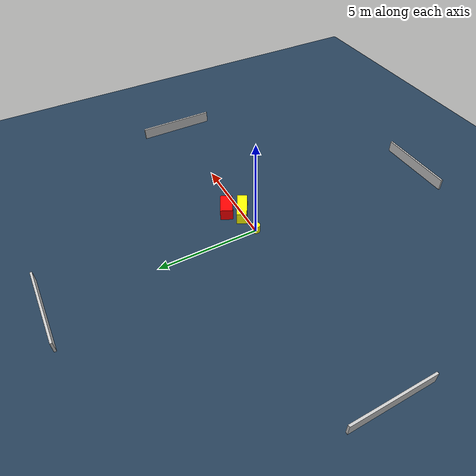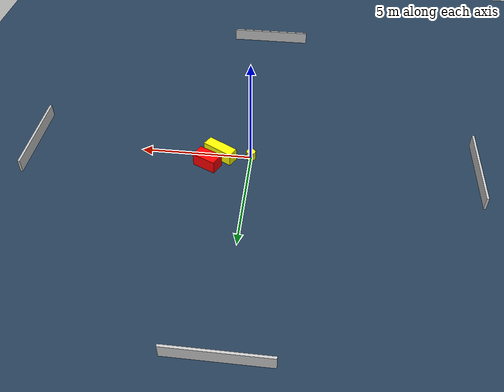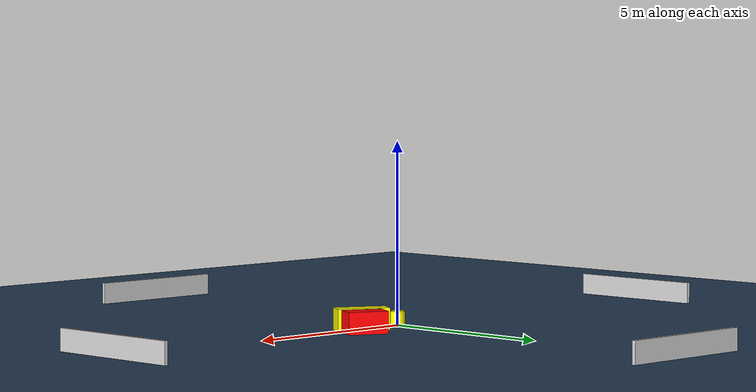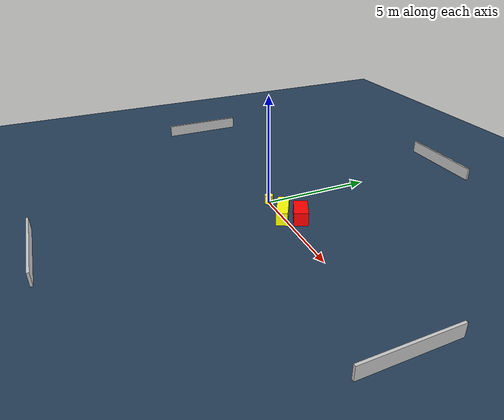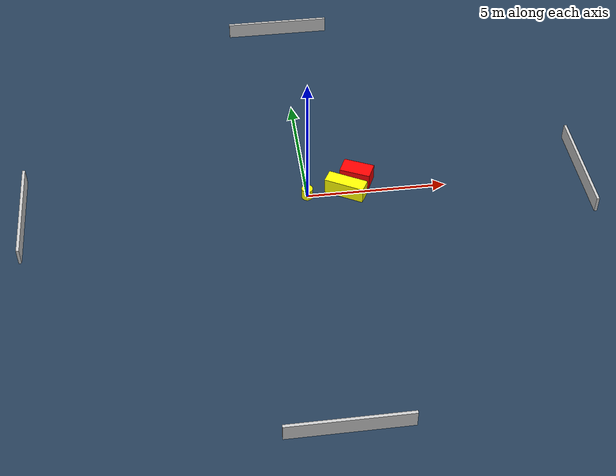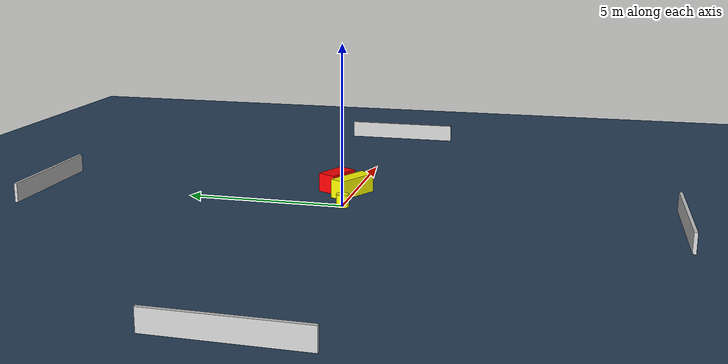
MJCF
<?xml version="1.0" ?>
<mujoco model="generated_environment">
  <option timestep="0.01" integrator="RK4" cone="elliptic"/>
  <default>
    <geom density="1"/>
  </default>
  <asset>
    <texture builtin="gradient" height="3072" name="skybox" rgb1="0.3 0.5 0.7" rgb2="0 0 0" type="skybox" width="512"/>
    <texture builtin="checker" height="300" name="groundplane" rgb1="0.2 0.3 0.4" rgb2="0.1 0.2 0.3" type="2d" width="300"/>
    <material name="groundplane" reflectance="0.2" texrepeat="5 5" texture="groundplane"/>
  </asset>
  <worldbody>
    <light dir="0 0 -1" directional="true" pos="0 0 1.5"/>
    <geom condim="3" friction="0.5 0.005 0.001" material="groundplane" name="floor" pos="0 0 0" size="0 0 0.05" type="plane"/>
    <body name="walls">
      <geom name="wall_1" condim="4" pos="-10.0 0.0 0.3" rgba="0.800000011920929 0.800000011920929 0.800000011920929 1.0" size="0.05 2.0 0.3" type="box"/>
      <geom name="wall_2" condim="4" pos="10.0 0.0 0.3" rgba="0.800000011920929 0.800000011920929 0.800000011920929 1.0" size="0.05 2.0 0.3" type="box"/>
      <geom name="wall_3" condim="4" pos="0.0 -10.0 0.3" rgba="0.800000011920929 0.800000011920929 0.800000011920929 1.0" size="2.0 0.05 0.3" type="box"/>
      <geom name="wall_4" condim="4" pos="0.0 10.0 0.3" rgba="0.800000011920929 0.800000011920929 0.800000011920929 1.0" size="2.0 0.05 0.3" type="box"/>
    </body>
    <body name="robot">
      <joint name="joint_x" type="slide" pos="0 0 0" axis="1 0 0"/>
      <joint name="joint_y" type="slide" pos="0 0 0" axis="0 1 0"/>
      <geom name="robot" type="cylinder" pos="0.0 0.0 0.2" size="0.2 0.2 0.0" mass="5.0" friction="1.0 0.005 0.0001" condim="4" rgba="1.0 1.0 0.0 1.0"/>
    </body>
    <body name="obstacle_1_movable">
      <geom name="obstacle_1_movable" condim="4" pos="1.394550048211943 0.024853139711061383 0.3" euler="0 0 150.8448914900489" friction="0.0 0.005 0.001" rgba="1.0 1.0 0.0 1.0" size="0.7226210017197141 0.2502809642076944 0.3" type="box" mass="0.1"/>
      <joint type="free"/>
    </body>
    <body name="obstacle_2_static">
      <geom name="obstacle_2_static" condim="4" pos="1.8826046195463713 0.6479867447807472 0.3" euler="0 0 244.6343832362993" friction="0.0 0.005 0.001" rgba="1.0 0.0 0.0 1.0" size="0.3119403453573309 0.5539682069479809 0.3" type="box"/>
    </body>
  </worldbody>
  <actuator>
    <motor name="actuator_x" joint="joint_x" gear="1" ctrlrange="-1 1"/>
    <motor name="actuator_y" joint="joint_y" gear="1" ctrlrange="-1 1"/>
  </actuator>
</mujoco>
